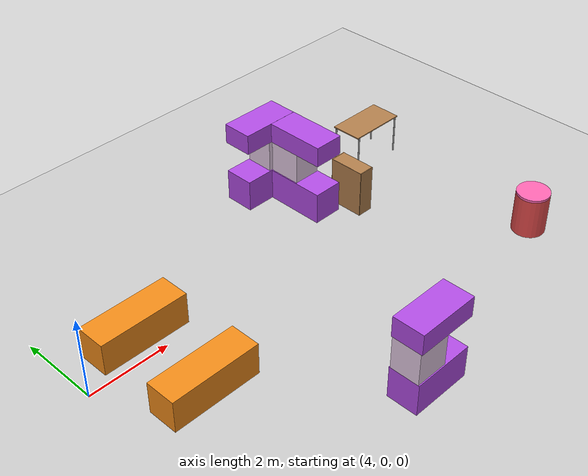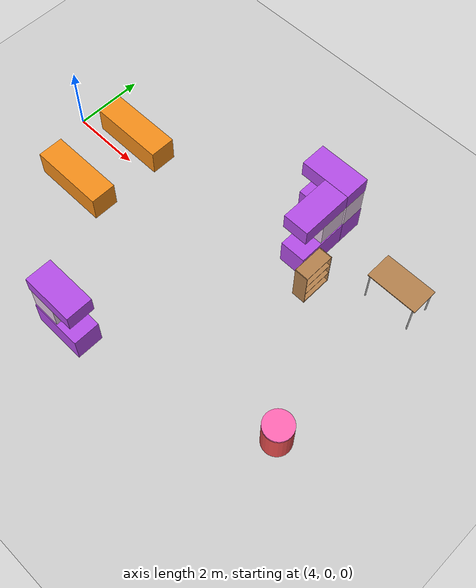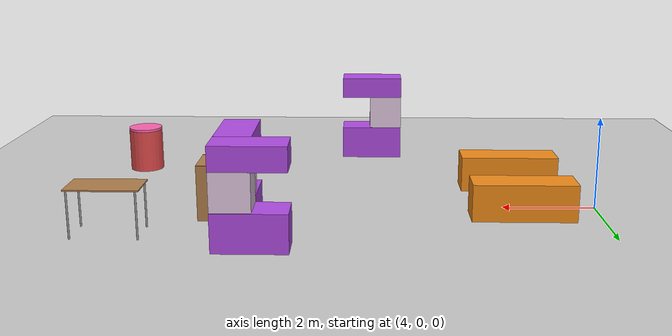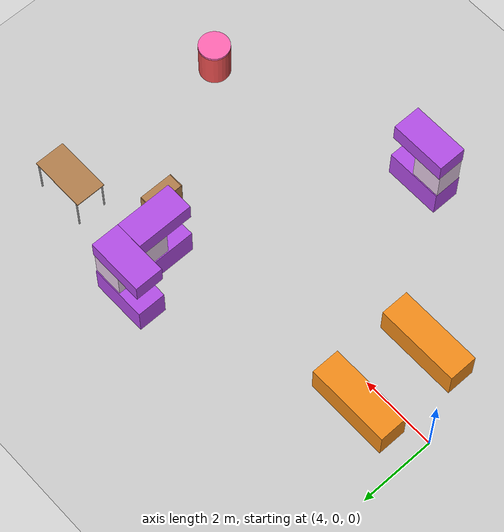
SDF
<sdf version="1.6">
 <world name="default">
  <model name="ground_plane">
   <static>1</static>
   <link name="link">
    <collision name="collision">
     <geometry><plane><normal>0 0 1</normal><size>100 100</size></plane></geometry>
     <surface><friction><ode><mu>100</mu><mu2>50</mu2></ode></friction></surface>
    </collision>
    <visual name="visual">
     <cast_shadows>0</cast_shadows>
     <geometry><plane><normal>0 0 1</normal><size>100 100</size></plane></geometry>
     <material>
      <script><uri>file://media/materials/scripts/gazebo.material</uri><name>Gazebo/Grey</name></script>
     </material>
    </visual>
   </link>
  </model>
  <model name="table_0">
   <static>1</static>
   <link name="link">
    <collision name="surface">
     <pose>0 0 1 0 -0 0</pose>
     <geometry><box><size>1.5 0.8 0.03</size></box></geometry>
     <surface><friction><ode><mu>0.6</mu><mu2>0.6</mu2></ode></friction></surface>
    </collision>
    <visual name="visual1">
     <pose>0 0 1 0 -0 0</pose>
     <geometry><box><size>1.5 0.8 0.03</size></box></geometry>
     <material>
      <script><uri>file://media/materials/scripts/gazebo.material</uri><name>Gazebo/Wood</name></script>
     </material>
    </visual>
    <collision name="front_left_leg">
     <pose>0.68 0.38 0.5 0 -0 0</pose>
     <geometry><cylinder><radius>0.02</radius><length>1</length></cylinder></geometry>
    </collision>
    <visual name="front_left_leg">
     <pose>0.68 0.38 0.5 0 -0 0</pose>
     <geometry><cylinder><radius>0.02</radius><length>1</length></cylinder></geometry>
     <material>
      <script><uri>file://media/materials/scripts/gazebo.material</uri><name>Gazebo/Grey</name></script>
     </material>
    </visual>
    <collision name="front_right_leg">
     <pose>0.68 -0.38 0.5 0 -0 0</pose>
     <geometry><cylinder><radius>0.02</radius><length>1</length></cylinder></geometry>
    </collision>
    <visual name="front_right_leg">
     <pose>0.68 -0.38 0.5 0 -0 0</pose>
     <geometry><cylinder><radius>0.02</radius><length>1</length></cylinder></geometry>
     <material>
      <script><uri>file://media/materials/scripts/gazebo.material</uri><name>Gazebo/Grey</name></script>
     </material>
    </visual>
    <collision name="back_right_leg">
     <pose>-0.68 -0.38 0.5 0 -0 0</pose>
     <geometry><cylinder><radius>0.02</radius><length>1</length></cylinder></geometry>
    </collision>
    <visual name="back_right_leg">
     <pose>-0.68 -0.38 0.5 0 -0 0</pose>
     <geometry><cylinder><radius>0.02</radius><length>1</length></cylinder></geometry>
     <material>
      <script><uri>file://media/materials/scripts/gazebo.material</uri><name>Gazebo/Grey</name></script>
     </material>
    </visual>
    <collision name="back_left_leg">
     <pose>-0.68 0.38 0.5 0 -0 0</pose>
     <geometry><cylinder><radius>0.02</radius><length>1</length></cylinder></geometry>
    </collision>
    <visual name="back_left_leg">
     <pose>-0.68 0.38 0.5 0 -0 0</pose>
     <geometry><cylinder><radius>0.02</radius><length>1</length></cylinder></geometry>
     <material>
      <script><uri>file://media/materials/scripts/gazebo.material</uri><name>Gazebo/Grey</name></script>
     </material>
    </visual>
   </link>
   <pose>14.15 1.8 0 0 -0 0</pose>
  </model>
  <model name="bookshelf">
   <static>1</static>
   <link name="link">
    <inertial><mass>1</mass></inertial>
    <collision name="back">
     <pose>0 0.005 0.6 0 -0 0</pose>
     <geometry><box><size>0.9 0.01 1.2</size></box></geometry>
    </collision>
    <visual name="visual1">
     <pose>0 0.005 0.6 0 -0 0</pose>
     <geometry><box><size>0.9 0.01 1.2</size></box></geometry>
     <material>
      <script><uri>file://media/materials/scripts/gazebo.material</uri><name>Gazebo/Wood</name></script>
     </material>
    </visual>
    <collision name="left_side">
     <pose>0.45 -0.195 0.6 0 -0 0</pose>
     <geometry><box><size>0.02 0.4 1.2</size></box></geometry>
    </collision>
    <visual name="visual2">
     <pose>0.45 -0.195 0.6 0 -0 0</pose>
     <geometry><box><size>0.02 0.4 1.2</size></box></geometry>
     <material>
      <script><uri>file://media/materials/scripts/gazebo.material</uri><name>Gazebo/Wood</name></script>
     </material>
    </visual>
    <collision name="right_side">
     <pose>-0.45 -0.195 0.6 0 -0 0</pose>
     <geometry><box><size>0.02 0.4 1.2</size></box></geometry>
    </collision>
    <visual name="visual3">
     <pose>-0.45 -0.195 0.6 0 -0 0</pose>
     <geometry><box><size>0.02 0.4 1.2</size></box></geometry>
     <material>
      <script><uri>file://media/materials/scripts/gazebo.material</uri><name>Gazebo/Wood</name></script>
     </material>
    </visual>
    <collision name="bottom">
     <pose>0 -0.195 0.03 0 -0 0</pose>
     <geometry><box><size>0.88 0.4 0.06</size></box></geometry>
    </collision>
    <visual name="visual4">
     <pose>0 -0.195 0.03 0 -0 0</pose>
     <geometry><box><size>0.88 0.4 0.06</size></box></geometry>
     <material>
      <script><uri>file://media/materials/scripts/gazebo.material</uri><name>Gazebo/Wood</name></script>
     </material>
    </visual>
    <collision name="top">
     <pose>0 -0.195 1.19 0 -0 0</pose>
     <geometry><box><size>0.88 0.4 0.02</size></box></geometry>
    </collision>
    <visual name="visual5">
     <pose>0 -0.195 1.19 0 -0 0</pose>
     <geometry><box><size>0.88 0.4 0.02</size></box></geometry>
     <material>
      <script><uri>file://media/materials/scripts/gazebo.material</uri><name>Gazebo/Wood</name></script>
     </material>
    </visual>
    <collision name="low_shelf">
     <pose>0 -0.195 0.43 0 -0 0</pose>
     <geometry><box><size>0.88 0.4 0.02</size></box></geometry>
    </collision>
    <visual name="visual6">
     <pose>0 -0.195 0.43 0 -0 0</pose>
     <geometry><box><size>0.88 0.4 0.02</size></box></geometry>
     <material>
      <script><uri>file://media/materials/scripts/gazebo.material</uri><name>Gazebo/Wood</name></script>
     </material>
    </visual>
    <collision name="high_shelf">
     <pose>0 -0.195 0.8 0 -0 0</pose>
     <geometry><box><size>0.88 0.4 0.02</size></box></geometry>
    </collision>
    <visual name="visual7">
     <pose>0 -0.195 0.8 0 -0 0</pose>
     <geometry><box><size>0.88 0.4 0.02</size></box></geometry>
     <material>
      <script><uri>file://media/materials/scripts/gazebo.material</uri><name>Gazebo/Wood</name></script>
     </material>
    </visual>
   </link>
   <pose>12.1 0.6 0 0 -0 1.5707</pose>
  </model>
  <model name="workbench">
   <link name="link_0">
    <pose>0 0 0.4 0 -0 0</pose>
    <inertial>
     <mass>0</mass>
     <inertia>
      <ixx>0.166667</ixx>
      <ixy>0</ixy>
      <ixz>0</ixz>
      <iyy>0.166667</iyy>
      <iyz>0</iyz>
      <izz>0.166667</izz>
     </inertia>
    </inertial>
    <visual name="visual">
     <geometry><box><size>2.2 0.75 0.8</size></box></geometry>
     <material>
      <lighting>1</lighting>
      <script><uri>file://media/materials/scripts/gazebo.material</uri><name>Gazebo/Orange</name></script>
      <shader type="pixel"><normal_map>__default__</normal_map></shader>
      <ambient>0.7 0.5 0.1 1</ambient>
      <diffuse>0.7 0.5 0.1 1</diffuse>
      <specular>0 0 0 1</specular>
      <emissive>0 0 0 1</emissive>
     </material>
    </visual>
    <collision name="collision">
     <geometry><box><size>2.2 0.75 0.8</size></box></geometry>
     <surface>
      <friction>
       <ode><mu>1</mu><mu2>1</mu2><fdir1>0 0 0</fdir1><slip1>0</slip1><slip2>0</slip2></ode>
       <torsional>
        <coefficient>1</coefficient>
        <patch_radius>0</patch_radius>
        <surface_radius>0</surface_radius>
        <use_patch_radius>1</use_patch_radius>
        <ode><slip>0</slip></ode>
       </torsional>
      </friction>
      <bounce><restitution_coefficient>0</restitution_coefficient><threshold>1e+06</threshold></bounce>
      <contact>
       <collide_without_contact>0</collide_without_contact>
       <collide_without_contact_bitmask>1</collide_without_contact_bitmask>
       <collide_bitmask>1</collide_bitmask>
       <ode>
        <soft_cfm>0</soft_cfm>
        <soft_erp>0.2</soft_erp>
        <kp>1e+13</kp>
        <kd>1</kd>
        <max_vel>0.01</max_vel>
        <min_depth>0</min_depth>
       </ode>
       <bullet>
        <split_impulse>1</split_impulse>
        <split_impulse_penetration_threshold>-0.01</split_impulse_penetration_threshold>
        <soft_cfm>0</soft_cfm>
        <soft_erp>0.2</soft_erp>
        <kp>1e+13</kp>
        <kd>1</kd>
       </bullet>
      </contact>
     </surface>
    </collision>
   </link>
   <static>1</static>
   <pose>5.675 0.6 0 0 -0 0</pose>
  </model>
  <model name="workbench_0">
   <link name="link_0">
    <pose>0 0 0.4 0 -0 0</pose>
    <inertial>
     <mass>0</mass>
     <inertia>
      <ixx>0.166667</ixx>
      <ixy>0</ixy>
      <ixz>0</ixz>
      <iyy>0.166667</iyy>
      <iyz>0</iyz>
      <izz>0.166667</izz>
     </inertia>
    </inertial>
    <visual name="visual">
     <geometry><box><size>2.2 0.75 0.8</size></box></geometry>
     <material>
      <lighting>1</lighting>
      <script><uri>file://media/materials/scripts/gazebo.material</uri><name>Gazebo/Orange</name></script>
      <shader type="pixel"><normal_map>__default__</normal_map></shader>
      <ambient>0.7 0.5 0.1 1</ambient>
      <diffuse>0.7 0.5 0.1 1</diffuse>
      <specular>0 0 0 1</specular>
      <emissive>0 0 0 1</emissive>
     </material>
    </visual>
    <collision name="collision">
     <geometry><box><size>2.2 0.75 0.8</size></box></geometry>
     <surface>
      <friction>
       <ode><mu>1</mu><mu2>1</mu2><fdir1>0 0 0</fdir1><slip1>0</slip1><slip2>0</slip2></ode>
       <torsional>
        <coefficient>1</coefficient>
        <patch_radius>0</patch_radius>
        <surface_radius>0</surface_radius>
        <use_patch_radius>1</use_patch_radius>
        <ode><slip>0</slip></ode>
       </torsional>
      </friction>
      <bounce><restitution_coefficient>0</restitution_coefficient><threshold>1e+06</threshold></bounce>
      <contact>
       <collide_without_contact>0</collide_without_contact>
       <collide_without_contact_bitmask>1</collide_without_contact_bitmask>
       <collide_bitmask>1</collide_bitmask>
       <ode>
        <soft_cfm>0</soft_cfm>
        <soft_erp>0.2</soft_erp>
        <kp>1e+13</kp>
        <kd>1</kd>
        <max_vel>0.01</max_vel>
        <min_depth>0</min_depth>
       </ode>
       <bullet>
        <split_impulse>1</split_impulse>
        <split_impulse_penetration_threshold>-0.01</split_impulse_penetration_threshold>
        <soft_cfm>0</soft_cfm>
        <soft_erp>0.2</soft_erp>
        <kp>1e+13</kp>
        <kd>1</kd>
       </bullet>
      </contact>
     </surface>
    </collision>
   </link>
   <static>1</static>
   <pose>5.675 -1.55 0 0 -0 0</pose>
  </model>
  <model name="machine_workbench_T1">
   <link name="link_0">
    <pose>0.116667 0 0.4 0 -0 0</pose>
    <inertial>
     <mass>1</mass>
     <inertia>
      <ixx>0.166667</ixx>
      <ixy>0</ixy>
      <ixz>0</ixz>
      <iyy>0.166667</iyy>
      <iyz>0</iyz>
      <izz>0.166667</izz>
     </inertia>
    </inertial>
    <visual name="visual">
     <geometry><box><size>1.5 0.75 0.8</size></box></geometry>
     <material>
      <lighting>1</lighting>
      <script><uri>file://media/materials/scripts/gazebo.material</uri><name>Gazebo/Grey</name></script>
      <shader type="pixel"><normal_map>__default__</normal_map></shader>
      <ambient>0.7 0.3 0.9 1</ambient>
      <diffuse>0.7 0.3 0.9 1</diffuse>
      <specular>0.01 0.01 0.01 1</specular>
      <emissive>0 0 0 1</emissive>
     </material>
    </visual>
    <collision name="collision">
     <geometry><box><size>1.5 0.75 0.8</size></box></geometry>
     <surface>
      <friction>
       <ode><mu>1</mu><mu2>1</mu2><fdir1>0 0 0</fdir1><slip1>0</slip1><slip2>0</slip2></ode>
       <torsional>
        <coefficient>1</coefficient>
        <patch_radius>0</patch_radius>
        <surface_radius>0</surface_radius>
        <use_patch_radius>1</use_patch_radius>
        <ode><slip>0</slip></ode>
       </torsional>
      </friction>
      <bounce><restitution_coefficient>0</restitution_coefficient><threshold>1e+06</threshold></bounce>
      <contact>
       <collide_without_contact>0</collide_without_contact>
       <collide_without_contact_bitmask>1</collide_without_contact_bitmask>
       <collide_bitmask>1</collide_bitmask>
       <ode>
        <soft_cfm>0</soft_cfm>
        <soft_erp>0.2</soft_erp>
        <kp>1e+13</kp>
        <kd>1</kd>
        <max_vel>0.01</max_vel>
        <min_depth>0</min_depth>
       </ode>
       <bullet>
        <split_impulse>1</split_impulse>
        <split_impulse_penetration_threshold>-0.01</split_impulse_penetration_threshold>
        <soft_cfm>0</soft_cfm>
        <soft_erp>0.2</soft_erp>
        <kp>1e+13</kp>
        <kd>1</kd>
       </bullet>
      </contact>
     </surface>
    </collision>
   </link>
   <link name="link_1">
    <pose>-0.233333 0 1.2 0 -0 0</pose>
    <inertial>
     <mass>1</mass>
     <inertia>
      <ixx>0.166667</ixx>
      <ixy>0</ixy>
      <ixz>0</ixz>
      <iyy>0.166667</iyy>
      <iyz>0</iyz>
      <izz>0.166667</izz>
     </inertia>
    </inertial>
    <visual name="visual">
     <geometry><box><size>0.8 0.7 0.8</size></box></geometry>
     <material>
      <lighting>1</lighting>
      <script><uri>file://media/materials/scripts/gazebo.material</uri><name>Gazebo/Grey</name></script>
      <shader type="pixel"><normal_map>__default__</normal_map></shader>
      <ambient>0.9 0.8 0.9 1</ambient>
      <diffuse>0.9 0.8 0.9 1</diffuse>
      <specular>0.01 0.01 0.01 1</specular>
      <emissive>0 0 0 1</emissive>
     </material>
    </visual>
    <collision name="collision">
     <geometry><box><size>0.8 0.7 0.8</size></box></geometry>
     <surface>
      <friction>
       <ode><mu>1</mu><mu2>1</mu2><fdir1>0 0 0</fdir1><slip1>0</slip1><slip2>0</slip2></ode>
       <torsional>
        <coefficient>1</coefficient>
        <patch_radius>0</patch_radius>
        <surface_radius>0</surface_radius>
        <use_patch_radius>1</use_patch_radius>
        <ode><slip>0</slip></ode>
       </torsional>
      </friction>
      <bounce><restitution_coefficient>0</restitution_coefficient><threshold>1e+06</threshold></bounce>
      <contact>
       <collide_without_contact>0</collide_without_contact>
       <collide_without_contact_bitmask>1</collide_without_contact_bitmask>
       <collide_bitmask>1</collide_bitmask>
       <ode>
        <soft_cfm>0</soft_cfm>
        <soft_erp>0.2</soft_erp>
        <kp>1e+13</kp>
        <kd>1</kd>
        <max_vel>0.01</max_vel>
        <min_depth>0</min_depth>
       </ode>
       <bullet>
        <split_impulse>1</split_impulse>
        <split_impulse_penetration_threshold>-0.01</split_impulse_penetration_threshold>
        <soft_cfm>0</soft_cfm>
        <soft_erp>0.2</soft_erp>
        <kp>1e+13</kp>
        <kd>1</kd>
       </bullet>
      </contact>
     </surface>
    </collision>
   </link>
   <link name="link_2">
    <pose>0.116667 0 1.85 0 -0 0</pose>
    <inertial>
     <mass>1</mass>
     <inertia>
      <ixx>0.166667</ixx>
      <ixy>0</ixy>
      <ixz>0</ixz>
      <iyy>0.166667</iyy>
      <iyz>0</iyz>
      <izz>0.166667</izz>
     </inertia>
    </inertial>
    <visual name="visual">
     <geometry><box><size>1.5 0.75 0.5</size></box></geometry>
     <material>
      <lighting>1</lighting>
      <script><uri>file://media/materials/scripts/gazebo.material</uri><name>Gazebo/Grey</name></script>
      <shader type="pixel"><normal_map>__default__</normal_map></shader>
      <ambient>0.7 0.3 0.9 1</ambient>
      <diffuse>0.7 0.3 0.9 1</diffuse>
      <specular>0.01 0.01 0.01 1</specular>
      <emissive>0 0 0 1</emissive>
     </material>
    </visual>
    <collision name="collision">
     <geometry><box><size>1.5 0.75 0.5</size></box></geometry>
     <surface>
      <friction>
       <ode><mu>1</mu><mu2>1</mu2><fdir1>0 0 0</fdir1><slip1>0</slip1><slip2>0</slip2></ode>
       <torsional>
        <coefficient>1</coefficient>
        <patch_radius>0</patch_radius>
        <surface_radius>0</surface_radius>
        <use_patch_radius>1</use_patch_radius>
        <ode><slip>0</slip></ode>
       </torsional>
      </friction>
      <bounce><restitution_coefficient>0</restitution_coefficient><threshold>1e+06</threshold></bounce>
      <contact>
       <collide_without_contact>0</collide_without_contact>
       <collide_without_contact_bitmask>1</collide_without_contact_bitmask>
       <collide_bitmask>1</collide_bitmask>
       <ode>
        <soft_cfm>0</soft_cfm>
        <soft_erp>0.2</soft_erp>
        <kp>1e+13</kp>
        <kd>1</kd>
        <max_vel>0.01</max_vel>
        <min_depth>0</min_depth>
       </ode>
       <bullet>
        <split_impulse>1</split_impulse>
        <split_impulse_penetration_threshold>-0.01</split_impulse_penetration_threshold>
        <soft_cfm>0</soft_cfm>
        <soft_erp>0.2</soft_erp>
        <kp>1e+13</kp>
        <kd>1</kd>
       </bullet>
      </contact>
     </surface>
    </collision>
   </link>
   <static>1</static>
   <pose>8.71295 -4.53973 0 0 -0 0</pose>
  </model>
  <model name="machine_workbench_T1_0">
   <link name="link_0">
    <pose>0.116667 0 0.4 0 -0 0</pose>
    <inertial>
     <mass>1</mass>
     <inertia>
      <ixx>0.166667</ixx>
      <ixy>0</ixy>
      <ixz>0</ixz>
      <iyy>0.166667</iyy>
      <iyz>0</iyz>
      <izz>0.166667</izz>
     </inertia>
    </inertial>
    <visual name="visual">
     <geometry><box><size>1.5 0.75 0.8</size></box></geometry>
     <material>
      <lighting>1</lighting>
      <script><uri>file://media/materials/scripts/gazebo.material</uri><name>Gazebo/Grey</name></script>
      <shader type="pixel"><normal_map>__default__</normal_map></shader>
      <ambient>0.7 0.3 0.9 1</ambient>
      <diffuse>0.7 0.3 0.9 1</diffuse>
      <specular>0.01 0.01 0.01 1</specular>
      <emissive>0 0 0 1</emissive>
     </material>
    </visual>
    <collision name="collision">
     <geometry><box><size>1.5 0.75 0.8</size></box></geometry>
     <surface>
      <friction>
       <ode><mu>1</mu><mu2>1</mu2><fdir1>0 0 0</fdir1><slip1>0</slip1><slip2>0</slip2></ode>
       <torsional>
        <coefficient>1</coefficient>
        <patch_radius>0</patch_radius>
        <surface_radius>0</surface_radius>
        <use_patch_radius>1</use_patch_radius>
        <ode><slip>0</slip></ode>
       </torsional>
      </friction>
      <bounce><restitution_coefficient>0</restitution_coefficient><threshold>1e+06</threshold></bounce>
      <contact>
       <collide_without_contact>0</collide_without_contact>
       <collide_without_contact_bitmask>1</collide_without_contact_bitmask>
       <collide_bitmask>1</collide_bitmask>
       <ode>
        <soft_cfm>0</soft_cfm>
        <soft_erp>0.2</soft_erp>
        <kp>1e+13</kp>
        <kd>1</kd>
        <max_vel>0.01</max_vel>
        <min_depth>0</min_depth>
       </ode>
       <bullet>
        <split_impulse>1</split_impulse>
        <split_impulse_penetration_threshold>-0.01</split_impulse_penetration_threshold>
        <soft_cfm>0</soft_cfm>
        <soft_erp>0.2</soft_erp>
        <kp>1e+13</kp>
        <kd>1</kd>
       </bullet>
      </contact>
     </surface>
    </collision>
   </link>
   <link name="link_1">
    <pose>-0.233333 0 1.2 0 -0 0</pose>
    <inertial>
     <mass>1</mass>
     <inertia>
      <ixx>0.166667</ixx>
      <ixy>0</ixy>
      <ixz>0</ixz>
      <iyy>0.166667</iyy>
      <iyz>0</iyz>
      <izz>0.166667</izz>
     </inertia>
    </inertial>
    <visual name="visual">
     <geometry><box><size>0.8 0.7 0.8</size></box></geometry>
     <material>
      <lighting>1</lighting>
      <script><uri>file://media/materials/scripts/gazebo.material</uri><name>Gazebo/Grey</name></script>
      <shader type="pixel"><normal_map>__default__</normal_map></shader>
      <ambient>0.9 0.8 0.9 1</ambient>
      <diffuse>0.9 0.8 0.9 1</diffuse>
      <specular>0.01 0.01 0.01 1</specular>
      <emissive>0 0 0 1</emissive>
     </material>
    </visual>
    <collision name="collision">
     <geometry><box><size>0.8 0.7 0.8</size></box></geometry>
     <surface>
      <friction>
       <ode><mu>1</mu><mu2>1</mu2><fdir1>0 0 0</fdir1><slip1>0</slip1><slip2>0</slip2></ode>
       <torsional>
        <coefficient>1</coefficient>
        <patch_radius>0</patch_radius>
        <surface_radius>0</surface_radius>
        <use_patch_radius>1</use_patch_radius>
        <ode><slip>0</slip></ode>
       </torsional>
      </friction>
      <bounce><restitution_coefficient>0</restitution_coefficient><threshold>1e+06</threshold></bounce>
      <contact>
       <collide_without_contact>0</collide_without_contact>
       <collide_without_contact_bitmask>1</collide_without_contact_bitmask>
       <collide_bitmask>1</collide_bitmask>
       <ode>
        <soft_cfm>0</soft_cfm>
        <soft_erp>0.2</soft_erp>
        <kp>1e+13</kp>
        <kd>1</kd>
        <max_vel>0.01</max_vel>
        <min_depth>0</min_depth>
       </ode>
       <bullet>
        <split_impulse>1</split_impulse>
        <split_impulse_penetration_threshold>-0.01</split_impulse_penetration_threshold>
        <soft_cfm>0</soft_cfm>
        <soft_erp>0.2</soft_erp>
        <kp>1e+13</kp>
        <kd>1</kd>
       </bullet>
      </contact>
     </surface>
    </collision>
   </link>
   <link name="link_2">
    <pose>0.116667 0 1.85 0 -0 0</pose>
    <inertial>
     <mass>1</mass>
     <inertia>
      <ixx>0.166667</ixx>
      <ixy>0</ixy>
      <ixz>0</ixz>
      <iyy>0.166667</iyy>
      <iyz>0</iyz>
      <izz>0.166667</izz>
     </inertia>
    </inertial>
    <visual name="visual">
     <geometry><box><size>1.5 0.75 0.5</size></box></geometry>
     <material>
      <lighting>1</lighting>
      <script><uri>file://media/materials/scripts/gazebo.material</uri><name>Gazebo/Grey</name></script>
      <shader type="pixel"><normal_map>__default__</normal_map></shader>
      <ambient>0.7 0.3 0.9 1</ambient>
      <diffuse>0.7 0.3 0.9 1</diffuse>
      <specular>0.01 0.01 0.01 1</specular>
      <emissive>0 0 0 1</emissive>
     </material>
    </visual>
    <collision name="collision">
     <geometry><box><size>1.5 0.75 0.5</size></box></geometry>
     <surface>
      <friction>
       <ode><mu>1</mu><mu2>1</mu2><fdir1>0 0 0</fdir1><slip1>0</slip1><slip2>0</slip2></ode>
       <torsional>
        <coefficient>1</coefficient>
        <patch_radius>0</patch_radius>
        <surface_radius>0</surface_radius>
        <use_patch_radius>1</use_patch_radius>
        <ode><slip>0</slip></ode>
       </torsional>
      </friction>
      <bounce><restitution_coefficient>0</restitution_coefficient><threshold>1e+06</threshold></bounce>
      <contact>
       <collide_without_contact>0</collide_without_contact>
       <collide_without_contact_bitmask>1</collide_without_contact_bitmask>
       <collide_bitmask>1</collide_bitmask>
       <ode>
        <soft_cfm>0</soft_cfm>
        <soft_erp>0.2</soft_erp>
        <kp>1e+13</kp>
        <kd>1</kd>
        <max_vel>0.01</max_vel>
        <min_depth>0</min_depth>
       </ode>
       <bullet>
        <split_impulse>1</split_impulse>
        <split_impulse_penetration_threshold>-0.01</split_impulse_penetration_threshold>
        <soft_cfm>0</soft_cfm>
        <soft_erp>0.2</soft_erp>
        <kp>1e+13</kp>
        <kd>1</kd>
       </bullet>
      </contact>
     </surface>
    </collision>
   </link>
   <static>1</static>
   <pose>11.547 1.53363 0 0 0 -1.5708</pose>
  </model>
  <model name="machine_workbench_T1_1">
   <link name="link_0">
    <pose>0.116667 0 0.4 0 -0 0</pose>
    <inertial>
     <mass>1</mass>
     <inertia>
      <ixx>0.166667</ixx>
      <ixy>0</ixy>
      <ixz>0</ixz>
      <iyy>0.166667</iyy>
      <iyz>0</iyz>
      <izz>0.166667</izz>
     </inertia>
    </inertial>
    <visual name="visual">
     <geometry><box><size>1.5 0.75 0.8</size></box></geometry>
     <material>
      <lighting>1</lighting>
      <script><uri>file://media/materials/scripts/gazebo.material</uri><name>Gazebo/Grey</name></script>
      <shader type="pixel"><normal_map>__default__</normal_map></shader>
      <ambient>0.7 0.3 0.9 1</ambient>
      <diffuse>0.7 0.3 0.9 1</diffuse>
      <specular>0.01 0.01 0.01 1</specular>
      <emissive>0 0 0 1</emissive>
     </material>
    </visual>
    <collision name="collision">
     <geometry><box><size>1.5 0.75 0.8</size></box></geometry>
     <surface>
      <friction>
       <ode><mu>1</mu><mu2>1</mu2><fdir1>0 0 0</fdir1><slip1>0</slip1><slip2>0</slip2></ode>
       <torsional>
        <coefficient>1</coefficient>
        <patch_radius>0</patch_radius>
        <surface_radius>0</surface_radius>
        <use_patch_radius>1</use_patch_radius>
        <ode><slip>0</slip></ode>
       </torsional>
      </friction>
      <bounce><restitution_coefficient>0</restitution_coefficient><threshold>1e+06</threshold></bounce>
      <contact>
       <collide_without_contact>0</collide_without_contact>
       <collide_without_contact_bitmask>1</collide_without_contact_bitmask>
       <collide_bitmask>1</collide_bitmask>
       <ode>
        <soft_cfm>0</soft_cfm>
        <soft_erp>0.2</soft_erp>
        <kp>1e+13</kp>
        <kd>1</kd>
        <max_vel>0.01</max_vel>
        <min_depth>0</min_depth>
       </ode>
       <bullet>
        <split_impulse>1</split_impulse>
        <split_impulse_penetration_threshold>-0.01</split_impulse_penetration_threshold>
        <soft_cfm>0</soft_cfm>
        <soft_erp>0.2</soft_erp>
        <kp>1e+13</kp>
        <kd>1</kd>
       </bullet>
      </contact>
     </surface>
    </collision>
   </link>
   <link name="link_1">
    <pose>-0.233333 0 1.2 0 -0 0</pose>
    <inertial>
     <mass>1</mass>
     <inertia>
      <ixx>0.166667</ixx>
      <ixy>0</ixy>
      <ixz>0</ixz>
      <iyy>0.166667</iyy>
      <iyz>0</iyz>
      <izz>0.166667</izz>
     </inertia>
    </inertial>
    <visual name="visual">
     <geometry><box><size>0.8 0.7 0.8</size></box></geometry>
     <material>
      <lighting>1</lighting>
      <script><uri>file://media/materials/scripts/gazebo.material</uri><name>Gazebo/Grey</name></script>
      <shader type="pixel"><normal_map>__default__</normal_map></shader>
      <ambient>0.9 0.8 0.9 1</ambient>
      <diffuse>0.9 0.8 0.9 1</diffuse>
      <specular>0.01 0.01 0.01 1</specular>
      <emissive>0 0 0 1</emissive>
     </material>
    </visual>
    <collision name="collision">
     <geometry><box><size>0.8 0.7 0.8</size></box></geometry>
     <surface>
      <friction>
       <ode><mu>1</mu><mu2>1</mu2><fdir1>0 0 0</fdir1><slip1>0</slip1><slip2>0</slip2></ode>
       <torsional>
        <coefficient>1</coefficient>
        <patch_radius>0</patch_radius>
        <surface_radius>0</surface_radius>
        <use_patch_radius>1</use_patch_radius>
        <ode><slip>0</slip></ode>
       </torsional>
      </friction>
      <bounce><restitution_coefficient>0</restitution_coefficient><threshold>1e+06</threshold></bounce>
      <contact>
       <collide_without_contact>0</collide_without_contact>
       <collide_without_contact_bitmask>1</collide_without_contact_bitmask>
       <collide_bitmask>1</collide_bitmask>
       <ode>
        <soft_cfm>0</soft_cfm>
        <soft_erp>0.2</soft_erp>
        <kp>1e+13</kp>
        <kd>1</kd>
        <max_vel>0.01</max_vel>
        <min_depth>0</min_depth>
       </ode>
       <bullet>
        <split_impulse>1</split_impulse>
        <split_impulse_penetration_threshold>-0.01</split_impulse_penetration_threshold>
        <soft_cfm>0</soft_cfm>
        <soft_erp>0.2</soft_erp>
        <kp>1e+13</kp>
        <kd>1</kd>
       </bullet>
      </contact>
     </surface>
    </collision>
   </link>
   <link name="link_2">
    <pose>0.116667 0 1.85 0 -0 0</pose>
    <inertial>
     <mass>1</mass>
     <inertia>
      <ixx>0.166667</ixx>
      <ixy>0</ixy>
      <ixz>0</ixz>
      <iyy>0.166667</iyy>
      <iyz>0</iyz>
      <izz>0.166667</izz>
     </inertia>
    </inertial>
    <visual name="visual">
     <geometry><box><size>1.5 0.75 0.5</size></box></geometry>
     <material>
      <lighting>1</lighting>
      <script><uri>file://media/materials/scripts/gazebo.material</uri><name>Gazebo/Grey</name></script>
      <shader type="pixel"><normal_map>__default__</normal_map></shader>
      <ambient>0.7 0.3 0.9 1</ambient>
      <diffuse>0.7 0.3 0.9 1</diffuse>
      <specular>0.01 0.01 0.01 1</specular>
      <emissive>0 0 0 1</emissive>
     </material>
    </visual>
    <collision name="collision">
     <geometry><box><size>1.5 0.75 0.5</size></box></geometry>
     <surface>
      <friction>
       <ode><mu>1</mu><mu2>1</mu2><fdir1>0 0 0</fdir1><slip1>0</slip1><slip2>0</slip2></ode>
       <torsional>
        <coefficient>1</coefficient>
        <patch_radius>0</patch_radius>
        <surface_radius>0</surface_radius>
        <use_patch_radius>1</use_patch_radius>
        <ode><slip>0</slip></ode>
       </torsional>
      </friction>
      <bounce><restitution_coefficient>0</restitution_coefficient><threshold>1e+06</threshold></bounce>
      <contact>
       <collide_without_contact>0</collide_without_contact>
       <collide_without_contact_bitmask>1</collide_without_contact_bitmask>
       <collide_bitmask>1</collide_bitmask>
       <ode>
        <soft_cfm>0</soft_cfm>
        <soft_erp>0.2</soft_erp>
        <kp>1e+13</kp>
        <kd>1</kd>
        <max_vel>0.01</max_vel>
        <min_depth>0</min_depth>
       </ode>
       <bullet>
        <split_impulse>1</split_impulse>
        <split_impulse_penetration_threshold>-0.01</split_impulse_penetration_threshold>
        <soft_cfm>0</soft_cfm>
        <soft_erp>0.2</soft_erp>
        <kp>1e+13</kp>
        <kd>1</kd>
       </bullet>
      </contact>
     </surface>
    </collision>
   </link>
   <static>1</static>
   <pose>11.2886 2.54414 0 0 0 -3.14159</pose>
  </model>
  <model name="garbage_can">
   <link name="link_3">
    <pose>0 0 0.5 0 -0 0</pose>
    <inertial>
     <mass>10</mass>
     <inertia><ixx>0.145833</ixx><ixy>0</ixy><ixz>0</ixz><iyy>0.145833</iyy><iyz>0</iyz><izz>0.125</izz></inertia>
    </inertial>
    <visual name="visual">
     <geometry><cylinder><radius>0.4</radius><length>1</length></cylinder></geometry>
     <material>
      <lighting>1</lighting>
      <script><uri>file://media/materials/scripts/gazebo.material</uri><name>Gazebo/Grey</name></script>
      <shader type="pixel"><normal_map>__default__</normal_map></shader>
      <ambient>0.9 0.3 0.3 1</ambient>
      <diffuse>0.9 0.3 0.3 1</diffuse>
      <specular>0.01 0.01 0.01 1</specular>
      <emissive>0 0 0 1</emissive>
     </material>
    </visual>
    <collision name="collision">
     <geometry><cylinder><radius>0.4</radius><length>1</length></cylinder></geometry>
     <surface>
      <friction>
       <ode><mu>1</mu><mu2>1</mu2><fdir1>0 0 0</fdir1><slip1>0</slip1><slip2>0</slip2></ode>
       <torsional>
        <coefficient>1</coefficient>
        <patch_radius>0</patch_radius>
        <surface_radius>0</surface_radius>
        <use_patch_radius>1</use_patch_radius>
        <ode><slip>0</slip></ode>
       </torsional>
      </friction>
      <bounce><restitution_coefficient>0</restitution_coefficient><threshold>1e+06</threshold></bounce>
      <contact>
       <collide_without_contact>0</collide_without_contact>
       <collide_without_contact_bitmask>1</collide_without_contact_bitmask>
       <collide_bitmask>1</collide_bitmask>
       <ode>
        <soft_cfm>0</soft_cfm>
        <soft_erp>0.2</soft_erp>
        <kp>1e+13</kp>
        <kd>1</kd>
        <max_vel>0.01</max_vel>
        <min_depth>0</min_depth>
       </ode>
       <bullet>
        <split_impulse>1</split_impulse>
        <split_impulse_penetration_threshold>-0.01</split_impulse_penetration_threshold>
        <soft_cfm>0</soft_cfm>
        <soft_erp>0.2</soft_erp>
        <kp>1e+13</kp>
        <kd>1</kd>
       </bullet>
      </contact>
     </surface>
    </collision>
   </link>
   <link name="link_4">
    <pose>0 0 1.03 0 -0 0</pose>
    <inertial>
     <mass>1</mass>
     <inertia><ixx>0.145833</ixx><ixy>0</ixy><ixz>0</ixz><iyy>0.145833</iyy><iyz>0</iyz><izz>0.125</izz></inertia>
    </inertial>
    <visual name="visual">
     <geometry><cylinder><radius>0.4</radius><length>0.06</length></cylinder></geometry>
     <material>
      <lighting>1</lighting>
      <script><uri>file://media/materials/scripts/gazebo.material</uri><name>Gazebo/Grey</name></script>
      <shader type="pixel"><normal_map>__default__</normal_map></shader>
      <ambient>1 0.4 0.7 1</ambient>
      <diffuse>1 0.4 0.7 1</diffuse>
      <specular>0.01 0.01 0.01 1</specular>
      <emissive>0 0 0 1</emissive>
     </material>
    </visual>
    <collision name="collision">
     <geometry><cylinder><radius>0.4</radius><length>0.06</length></cylinder></geometry>
     <surface>
      <friction>
       <ode><mu>1</mu><mu2>1</mu2><fdir1>0 0 0</fdir1><slip1>0</slip1><slip2>0</slip2></ode>
       <torsional>
        <coefficient>1</coefficient>
        <patch_radius>0</patch_radius>
        <surface_radius>0</surface_radius>
        <use_patch_radius>1</use_patch_radius>
        <ode><slip>0</slip></ode>
       </torsional>
      </friction>
      <bounce><restitution_coefficient>0</restitution_coefficient><threshold>1e+06</threshold></bounce>
      <contact>
       <collide_without_contact>0</collide_without_contact>
       <collide_without_contact_bitmask>1</collide_without_contact_bitmask>
       <collide_bitmask>1</collide_bitmask>
       <ode>
        <soft_cfm>0</soft_cfm>
        <soft_erp>0.2</soft_erp>
        <kp>1e+13</kp>
        <kd>1</kd>
        <max_vel>0.01</max_vel>
        <min_depth>0</min_depth>
       </ode>
       <bullet>
        <split_impulse>1</split_impulse>
        <split_impulse_penetration_threshold>-0.01</split_impulse_penetration_threshold>
        <soft_cfm>0</soft_cfm>
        <soft_erp>0.2</soft_erp>
        <kp>1e+13</kp>
        <kd>1</kd>
       </bullet>
      </contact>
     </surface>
    </collision>
   </link>
   <static>1</static>
   <pose>14.5129 -3.02183 0 0 -0 0</pose>
  </model>
 </world>
</sdf>
